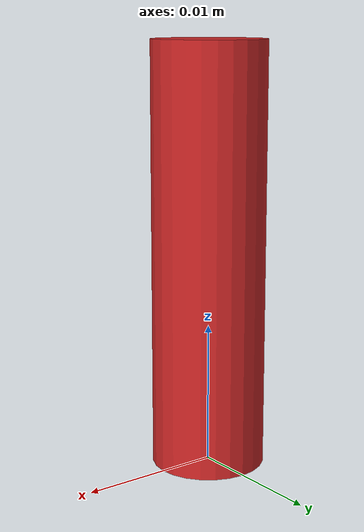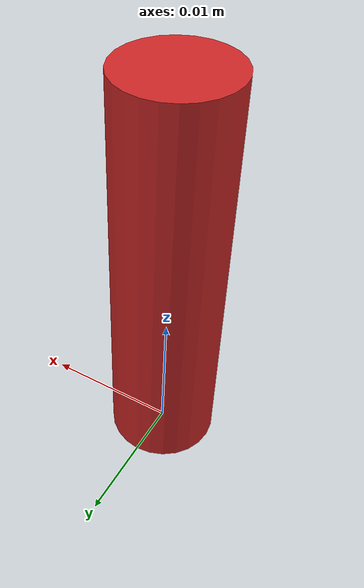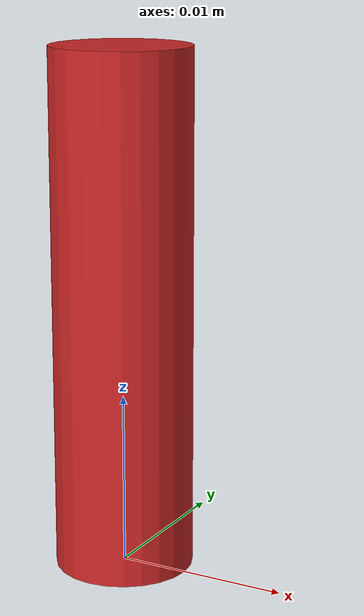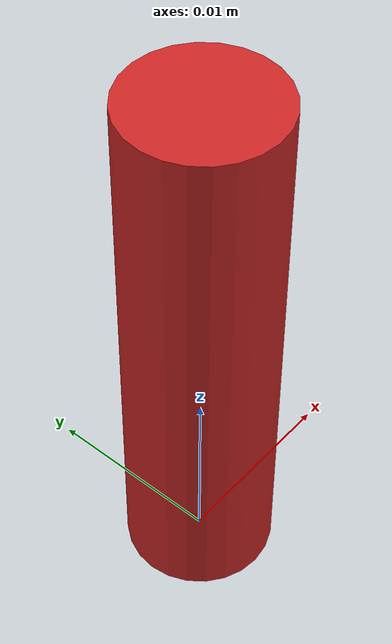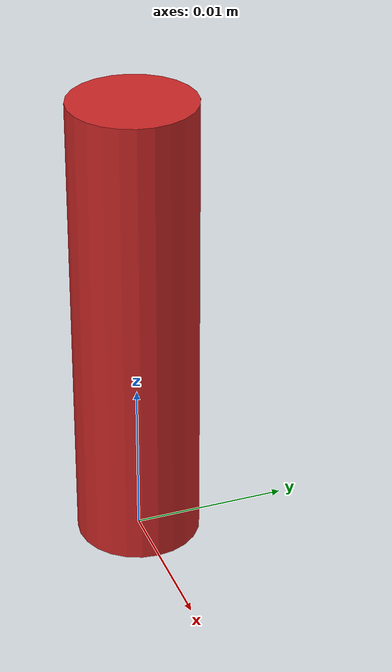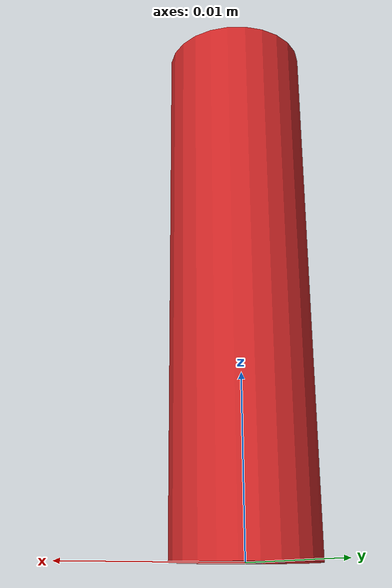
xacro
<?xml version="1.0" encoding="utf-8"?>
<robot name="C101350.SLDPRT" xmlns:xacro="http://www.ros.org/wiki/xacro">

	<link name="C101350.SLDPRT">
		<inertial>
			<origin xyz="-1.0658E-19 -3.5447E-20 0.015" rpy="0 0 0"></origin>
			<mass value="0.0014585"></mass>
			<inertia ixx="1.0843E-07" ixy="-5.5099E-42" ixz="-5.9762E-25" iyy="1.0843E-07" iyz="-3.6651E-40" izz="1.1439E-08"></inertia>
		</inertial>
		<visual>
			<origin xyz="0 0 0" rpy="0 0 0"></origin>
			<geometry>
				<mesh filename="package://object_description/urdfs/C101350.SLDPRT/meshes/C101350.SLDPRT.STL" scale="0.9 0.9 0.9"></mesh>
			</geometry>
			<material name="">
				<color rgba="0.79216 0.81961 0.93333 1"></color>
			</material>
		</visual>
		<collision>
			<origin xyz="0 0 0" rpy="0 0 0"></origin>
			<geometry>
				<mesh filename="package://object_description/urdfs/C101350.SLDPRT/meshes/C101350.SLDPRT.STL" scale="0.9 0.9 0.9"></mesh>
			</geometry>
		</collision>
	</link>
	<link name="C101350 pin insert 1">
		<visual>
			<origin xyz="0 0 0" rpy="0 0 0"></origin>
			<geometry>
				<cylinder length="0.03" radius="0.004"></cylinder>
			</geometry>
		</visual>
	</link>
	<joint name="C101350 pin insert 1 joint" type="fixed">
		<origin xyz="0.0 0.0 0.015" rpy="0.0 0.0 0.0"></origin>
		<parent link="C101350.SLDPRT"></parent>
		<child link="C101350 pin insert 1"></child>
	</joint>
	<gazebo reference="C101350 pin insert 1">
		<material>Gazebo/RedTransparent</material>
	</gazebo>
</robot>
